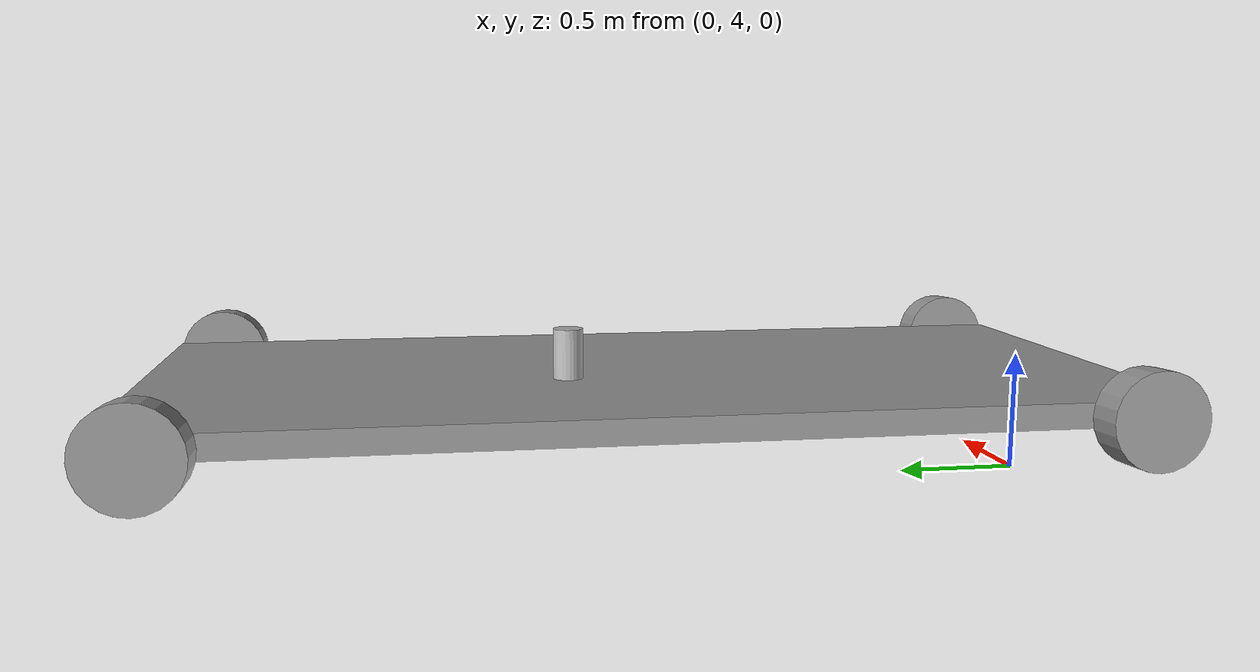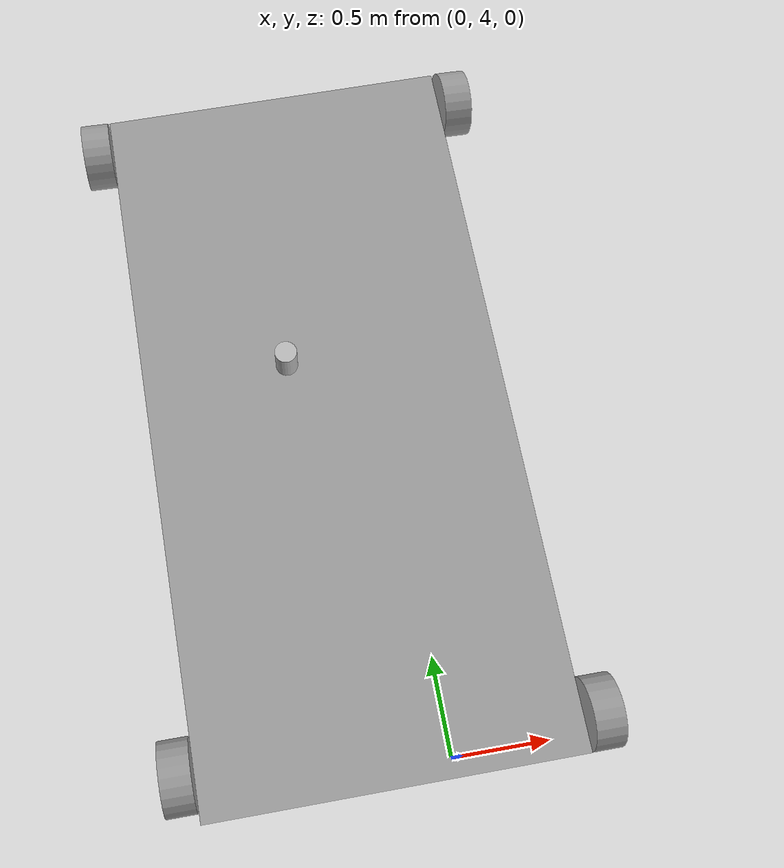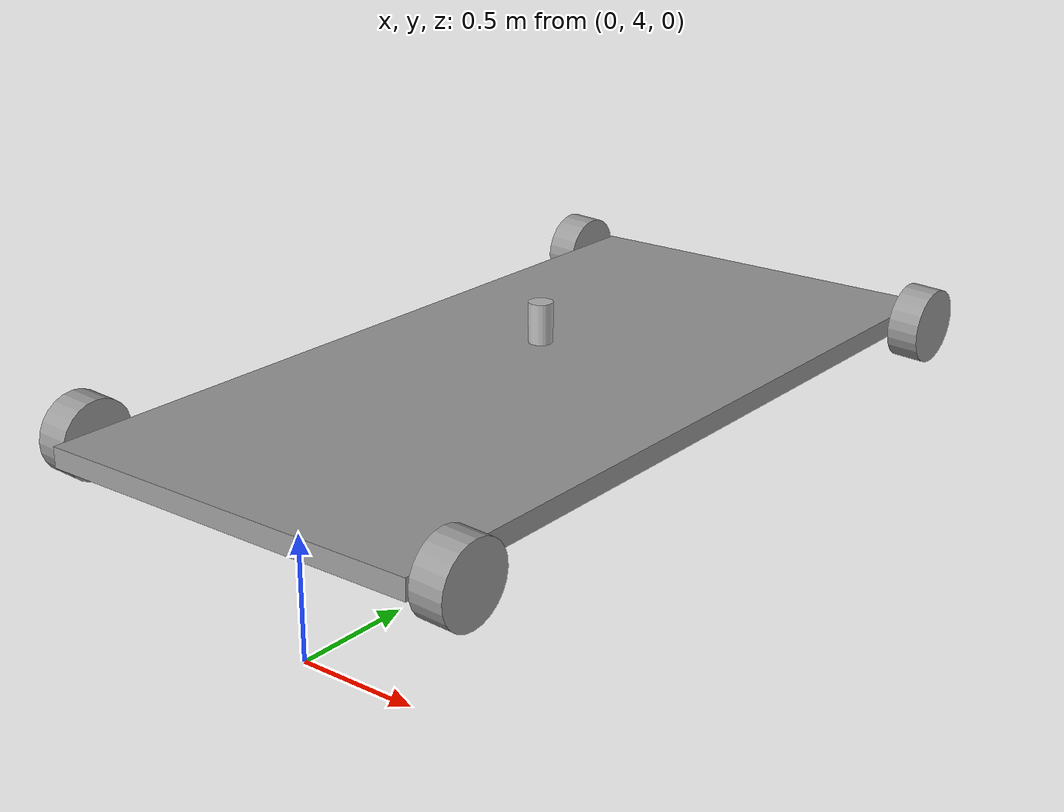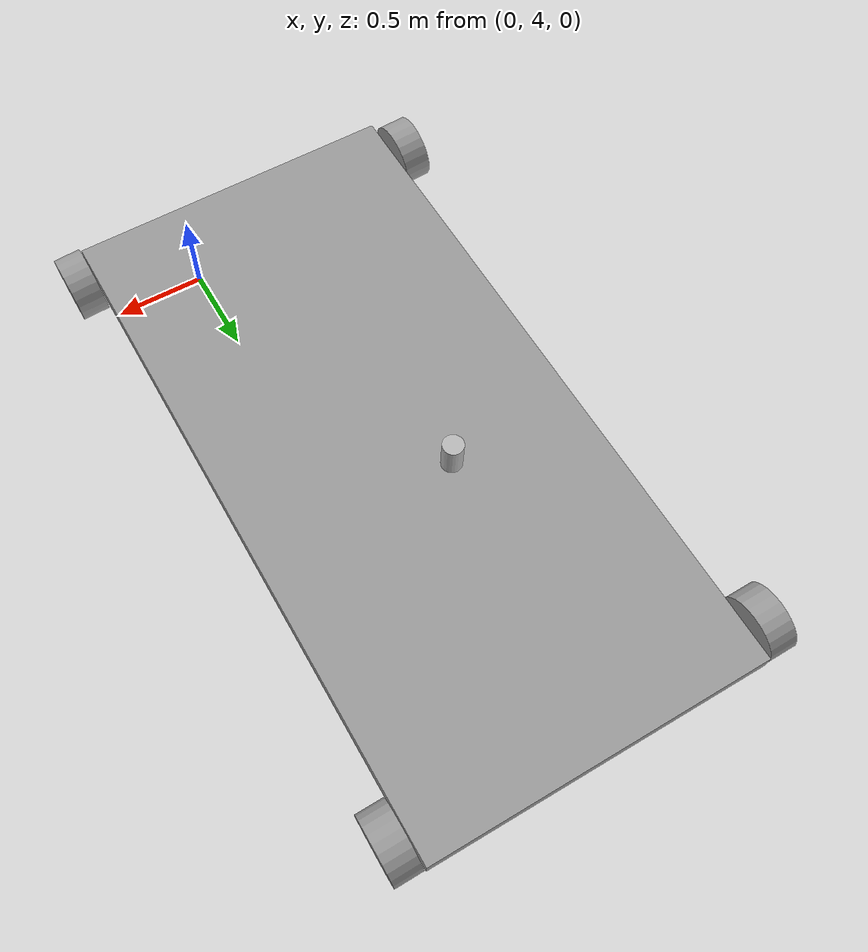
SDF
<?xml version='1.0'?>
<sdf version='1.6'>
  <model name='Cart'>
    <link name='link_0'>
      <pose frame=''>-0.321269 5.73085 0.5 0 -0 0</pose>
      <inertial>
        <mass>0.578674</mass>
        <inertia>
          <ixx>0.637469</ixx>
          <ixy>0</ixy>
          <ixz>0</ixz>
          <iyy>0.154218</iyy>
          <iyz>0</iyz>
          <izz>0.790921</izz>
        </inertia>
        <pose frame=''>0 0 0 0 -0 0</pose>
      </inertial>
      <gravity>1</gravity>
      <self_collide>0</self_collide>
      <kinematic>0</kinematic>
      <visual name='visual'>
        <pose frame=''>0 0 0 0 -0 0</pose>
        <geometry>
          <box>
            <size>1.78608 3.63473 0.08915</size>
          </box>
        </geometry>
        <material>
          <lighting>1</lighting>
          <script>
            <uri>file://media/materials/scripts/gazebo.material</uri>
            <name>Gazebo/Grey</name>
          </script>
          <shader type='pixel'>
            <normal_map>__default__</normal_map>
          </shader>
          <ambient>0.3 0.3 0.3 1</ambient>
          <diffuse>0.7 0.7 0.7 1</diffuse>
          <specular>0.01 0.01 0.01 1</specular>
          <emissive>0 0 0 1</emissive>
        </material>
        <transparency>0</transparency>
        <cast_shadows>1</cast_shadows>
      </visual>
      <collision name='collision'>
        <laser_retro>0</laser_retro>
        <max_contacts>10</max_contacts>
        <pose frame=''>0 0 0 0 -0 0</pose>
        <geometry>
          <box>
            <size>1.78608 3.63473 0.08915</size>
          </box>
        </geometry>
        <surface>
          <friction>
            <ode>
              <mu>1</mu>
              <mu2>1</mu2>
              <fdir1>0 0 0</fdir1>
              <slip1>0</slip1>
              <slip2>0</slip2>
            </ode>
            <torsional>
              <coefficient>1</coefficient>
              <patch_radius>0</patch_radius>
              <surface_radius>0</surface_radius>
              <use_patch_radius>1</use_patch_radius>
              <ode>
                <slip>0</slip>
              </ode>
            </torsional>
          </friction>
          <bounce>
            <restitution_coefficient>0</restitution_coefficient>
            <threshold>1e+06</threshold>
          </bounce>
          <contact>
            <collide_without_contact>0</collide_without_contact>
            <collide_without_contact_bitmask>1</collide_without_contact_bitmask>
            <collide_bitmask>1</collide_bitmask>
            <ode>
              <soft_cfm>0</soft_cfm>
              <soft_erp>0.2</soft_erp>
              <kp>1e+13</kp>
              <kd>1</kd>
              <max_vel>0.01</max_vel>
              <min_depth>0</min_depth>
            </ode>
            <bullet>
              <split_impulse>1</split_impulse>
              <split_impulse_penetration_threshold>-0.01</split_impulse_penetration_threshold>
              <soft_cfm>0</soft_cfm>
              <soft_erp>0.2</soft_erp>
              <kp>1e+13</kp>
              <kd>1</kd>
            </bullet>
          </contact>
        </surface>
      </collision>
    </link>
    <link name='link_1'>
      <pose frame=''>0.652344 7.37726 0.5 3.14159 1.52014 3.14159</pose>
      <inertial>
        <mass>0.016835</mass>
        <inertia>
          <ixx>0.000152095</ixx>
          <ixy>0</ixy>
          <ixz>0</ixz>
          <iyy>0.000152095</iyy>
          <iyz>0</iyz>
          <izz>0.000245993</izz>
        </inertia>
        <pose frame=''>0 0 0 0 -0 0</pose>
      </inertial>
      <gravity>1</gravity>
      <self_collide>0</self_collide>
      <kinematic>0</kinematic>
      <visual name='visual'>
        <pose frame=''>0 0 0 0 -0 0</pose>
        <geometry>
          <cylinder>
            <radius>0.17095</radius>
            <length>0.14402</length>
          </cylinder>
        </geometry>
        <material>
          <lighting>1</lighting>
          <script>
            <uri>file://media/materials/scripts/gazebo.material</uri>
            <name>Gazebo/Grey</name>
          </script>
          <shader type='pixel'>
            <normal_map>__default__</normal_map>
          </shader>
          <ambient>0.3 0.3 0.3 1</ambient>
          <diffuse>0.7 0.7 0.7 1</diffuse>
          <specular>0.01 0.01 0.01 1</specular>
          <emissive>0 0 0 1</emissive>
        </material>
        <transparency>0</transparency>
        <cast_shadows>1</cast_shadows>
      </visual>
      <collision name='collision'>
        <laser_retro>0</laser_retro>
        <max_contacts>10</max_contacts>
        <pose frame=''>0 0 0 0 -0 0</pose>
        <geometry>
          <cylinder>
            <radius>0.17095</radius>
            <length>0.14402</length>
          </cylinder>
        </geometry>
        <surface>
          <friction>
            <ode>
              <mu>1</mu>
              <mu2>1</mu2>
              <fdir1>0 0 0</fdir1>
              <slip1>0</slip1>
              <slip2>0</slip2>
            </ode>
            <torsional>
              <coefficient>1</coefficient>
              <patch_radius>0</patch_radius>
              <surface_radius>0</surface_radius>
              <use_patch_radius>1</use_patch_radius>
              <ode>
                <slip>0</slip>
              </ode>
            </torsional>
          </friction>
          <bounce>
            <restitution_coefficient>0</restitution_coefficient>
            <threshold>1e+06</threshold>
          </bounce>
          <contact>
            <collide_without_contact>0</collide_without_contact>
            <collide_without_contact_bitmask>1</collide_without_contact_bitmask>
            <collide_bitmask>1</collide_bitmask>
            <ode>
              <soft_cfm>0</soft_cfm>
              <soft_erp>0.2</soft_erp>
              <kp>1e+13</kp>
              <kd>1</kd>
              <max_vel>0.01</max_vel>
              <min_depth>0</min_depth>
            </ode>
            <bullet>
              <split_impulse>1</split_impulse>
              <split_impulse_penetration_threshold>-0.01</split_impulse_penetration_threshold>
              <soft_cfm>0</soft_cfm>
              <soft_erp>0.2</soft_erp>
              <kp>1e+13</kp>
              <kd>1</kd>
            </bullet>
          </contact>
        </surface>
      </collision>
    </link>
    <link name='link_1_clone'>
      <pose frame=''>0.652344 4.08444 0.5 3.14159 1.52014 3.14159</pose>
      <inertial>
        <mass>0.016835</mass>
        <inertia>
          <ixx>0.000152095</ixx>
          <ixy>0</ixy>
          <ixz>0</ixz>
          <iyy>0.000152095</iyy>
          <iyz>0</iyz>
          <izz>0.000245993</izz>
        </inertia>
        <pose frame=''>0 0 0 0 -0 0</pose>
      </inertial>
      <self_collide>0</self_collide>
      <kinematic>0</kinematic>
      <visual name='visual'>
        <pose frame=''>0 0 0 0 -0 0</pose>
        <geometry>
          <cylinder>
            <radius>0.17095</radius>
            <length>0.14402</length>
          </cylinder>
        </geometry>
        <material>
          <lighting>1</lighting>
          <script>
            <uri>file://media/materials/scripts/gazebo.material</uri>
            <name>Gazebo/Grey</name>
          </script>
          <shader type='pixel'>
            <normal_map>__default__</normal_map>
          </shader>
          <ambient>0.3 0.3 0.3 1</ambient>
          <diffuse>0.7 0.7 0.7 1</diffuse>
          <specular>0.01 0.01 0.01 1</specular>
          <emissive>0 0 0 1</emissive>
        </material>
        <transparency>0</transparency>
        <cast_shadows>1</cast_shadows>
      </visual>
      <collision name='collision'>
        <laser_retro>0</laser_retro>
        <max_contacts>10</max_contacts>
        <pose frame=''>0 0 0 0 -0 0</pose>
        <geometry>
          <cylinder>
            <radius>0.17095</radius>
            <length>0.14402</length>
          </cylinder>
        </geometry>
        <surface>
          <friction>
            <ode>
              <mu>1</mu>
              <mu2>1</mu2>
              <fdir1>0 0 0</fdir1>
              <slip1>0</slip1>
              <slip2>0</slip2>
            </ode>
            <torsional>
              <coefficient>1</coefficient>
              <patch_radius>0</patch_radius>
              <surface_radius>0</surface_radius>
              <use_patch_radius>1</use_patch_radius>
              <ode>
                <slip>0</slip>
              </ode>
            </torsional>
          </friction>
          <bounce>
            <restitution_coefficient>0</restitution_coefficient>
            <threshold>1e+06</threshold>
          </bounce>
          <contact>
            <collide_without_contact>0</collide_without_contact>
            <collide_without_contact_bitmask>1</collide_without_contact_bitmask>
            <collide_bitmask>1</collide_bitmask>
            <ode>
              <soft_cfm>0</soft_cfm>
              <soft_erp>0.2</soft_erp>
              <kp>1e+13</kp>
              <kd>1</kd>
              <max_vel>0.01</max_vel>
              <min_depth>0</min_depth>
            </ode>
            <bullet>
              <split_impulse>1</split_impulse>
              <split_impulse_penetration_threshold>-0.01</split_impulse_penetration_threshold>
              <soft_cfm>0</soft_cfm>
              <soft_erp>0.2</soft_erp>
              <kp>1e+13</kp>
              <kd>1</kd>
            </bullet>
          </contact>
        </surface>
      </collision>
    </link>
    <link name='link_1_clone_0'>
      <pose frame=''>-1.29488 4.13225 0.5 3.14159 1.52014 3.14159</pose>
      <inertial>
        <mass>0.016835</mass>
        <inertia>
          <ixx>0.000152095</ixx>
          <ixy>0</ixy>
          <ixz>0</ixz>
          <iyy>0.000152095</iyy>
          <iyz>0</iyz>
          <izz>0.000245993</izz>
        </inertia>
        <pose frame=''>0 0 0 0 -0 0</pose>
      </inertial>
      <self_collide>0</self_collide>
      <kinematic>0</kinematic>
      <visual name='visual'>
        <pose frame=''>0 0 0 0 -0 0</pose>
        <geometry>
          <cylinder>
            <radius>0.17095</radius>
            <length>0.14402</length>
          </cylinder>
        </geometry>
        <material>
          <lighting>1</lighting>
          <script>
            <uri>file://media/materials/scripts/gazebo.material</uri>
            <name>Gazebo/Grey</name>
          </script>
          <shader type='pixel'>
            <normal_map>__default__</normal_map>
          </shader>
          <ambient>0.3 0.3 0.3 1</ambient>
          <diffuse>0.7 0.7 0.7 1</diffuse>
          <specular>0.01 0.01 0.01 1</specular>
          <emissive>0 0 0 1</emissive>
        </material>
        <transparency>0</transparency>
        <cast_shadows>1</cast_shadows>
      </visual>
      <collision name='collision'>
        <laser_retro>0</laser_retro>
        <max_contacts>10</max_contacts>
        <pose frame=''>0 0 0 0 -0 0</pose>
        <geometry>
          <cylinder>
            <radius>0.17095</radius>
            <length>0.14402</length>
          </cylinder>
        </geometry>
        <surface>
          <friction>
            <ode>
              <mu>1</mu>
              <mu2>1</mu2>
              <fdir1>0 0 0</fdir1>
              <slip1>0</slip1>
              <slip2>0</slip2>
            </ode>
            <torsional>
              <coefficient>1</coefficient>
              <patch_radius>0</patch_radius>
              <surface_radius>0</surface_radius>
              <use_patch_radius>1</use_patch_radius>
              <ode>
                <slip>0</slip>
              </ode>
            </torsional>
          </friction>
          <bounce>
            <restitution_coefficient>0</restitution_coefficient>
            <threshold>1e+06</threshold>
          </bounce>
          <contact>
            <collide_without_contact>0</collide_without_contact>
            <collide_without_contact_bitmask>1</collide_without_contact_bitmask>
            <collide_bitmask>1</collide_bitmask>
            <ode>
              <soft_cfm>0</soft_cfm>
              <soft_erp>0.2</soft_erp>
              <kp>1e+13</kp>
              <kd>1</kd>
              <max_vel>0.01</max_vel>
              <min_depth>0</min_depth>
            </ode>
            <bullet>
              <split_impulse>1</split_impulse>
              <split_impulse_penetration_threshold>-0.01</split_impulse_penetration_threshold>
              <soft_cfm>0</soft_cfm>
              <soft_erp>0.2</soft_erp>
              <kp>1e+13</kp>
              <kd>1</kd>
            </bullet>
          </contact>
        </surface>
      </collision>
    </link>
    <link name='link_1_clone_1'>
      <pose frame=''>-1.29488 7.37726 0.5 3.14159 1.52014 3.14159</pose>
      <inertial>
        <mass>0.016835</mass>
        <inertia>
          <ixx>0.000152095</ixx>
          <ixy>0</ixy>
          <ixz>0</ixz>
          <iyy>0.000152095</iyy>
          <iyz>0</iyz>
          <izz>0.000245993</izz>
        </inertia>
        <pose frame=''>0 0 0 0 -0 0</pose>
      </inertial>
      <self_collide>0</self_collide>
      <kinematic>0</kinematic>
      <visual name='visual'>
        <pose frame=''>0 0 0 0 -0 0</pose>
        <geometry>
          <cylinder>
            <radius>0.17095</radius>
            <length>0.14402</length>
          </cylinder>
        </geometry>
        <material>
          <lighting>1</lighting>
          <script>
            <uri>file://media/materials/scripts/gazebo.material</uri>
            <name>Gazebo/Grey</name>
          </script>
          <shader type='pixel'>
            <normal_map>__default__</normal_map>
          </shader>
          <ambient>0.3 0.3 0.3 1</ambient>
          <diffuse>0.7 0.7 0.7 1</diffuse>
          <specular>0.01 0.01 0.01 1</specular>
          <emissive>0 0 0 1</emissive>
        </material>
        <transparency>0</transparency>
        <cast_shadows>1</cast_shadows>
      </visual>
      <collision name='collision'>
        <laser_retro>0</laser_retro>
        <max_contacts>10</max_contacts>
        <pose frame=''>0 0 0 0 -0 0</pose>
        <geometry>
          <cylinder>
            <radius>0.17095</radius>
            <length>0.14402</length>
          </cylinder>
        </geometry>
        <surface>
          <friction>
            <ode>
              <mu>1</mu>
              <mu2>1</mu2>
              <fdir1>0 0 0</fdir1>
              <slip1>0</slip1>
              <slip2>0</slip2>
            </ode>
            <torsional>
              <coefficient>1</coefficient>
              <patch_radius>0</patch_radius>
              <surface_radius>0</surface_radius>
              <use_patch_radius>1</use_patch_radius>
              <ode>
                <slip>0</slip>
              </ode>
            </torsional>
          </friction>
          <bounce>
            <restitution_coefficient>0</restitution_coefficient>
            <threshold>1e+06</threshold>
          </bounce>
          <contact>
            <collide_without_contact>0</collide_without_contact>
            <collide_without_contact_bitmask>1</collide_without_contact_bitmask>
            <collide_bitmask>1</collide_bitmask>
            <ode>
              <soft_cfm>0</soft_cfm>
              <soft_erp>0.2</soft_erp>
              <kp>1e+13</kp>
              <kd>1</kd>
              <max_vel>0.01</max_vel>
              <min_depth>0</min_depth>
            </ode>
            <bullet>
              <split_impulse>1</split_impulse>
              <split_impulse_penetration_threshold>-0.01</split_impulse_penetration_threshold>
              <soft_cfm>0</soft_cfm>
              <soft_erp>0.2</soft_erp>
              <kp>1e+13</kp>
              <kd>1</kd>
            </bullet>
          </contact>
        </surface>
      </collision>
    </link>
    <model name='beer'>
      <link name='link'>
        <pose frame=''>0 0 0.115 0 -0 0</pose>
        <inertial>
          <mass>0.39</mass>
          <inertia>
            <ixx>0.00058</ixx>
            <ixy>0</ixy>
            <ixz>0</ixz>
            <iyy>0.00058</iyy>
            <iyz>0</iyz>
            <izz>0.00019</izz>
          </inertia>
        </inertial>
        <collision name='collision'>
          <geometry>
            <cylinder>
              <radius>0.055</radius>
              <length>0.23</length>
            </cylinder>
          </geometry>
        </collision>
        <visual name='visual'>
          <geometry>
            <cylinder>
              <radius>0.055</radius>
              <length>0.23</length>
            </cylinder>
          </geometry>
          <material>
            <script>
              <uri>model://beer/materials/scripts</uri>
              <uri>model://beer/materials/textures</uri>
              <name>Beer/Diffuse</name>
            </script>
          </material>
        </visual>
      </link>
      <pose frame=''>-0.487945 5.99468 0.5 0 -0 0</pose>
    </model>
    <joint name='link_0_JOINT_0' type='revolute'>
      <parent>link_0</parent>
      <child>link_1</child>
      <pose frame=''>0 0 0 0 -0 0</pose>
      <axis>
        <xyz>0 0 1</xyz>
        <use_parent_model_frame>0</use_parent_model_frame>
        <limit>
          <lower>-1.79769e+308</lower>
          <upper>1.79769e+308</upper>
          <effort>-1</effort>
          <velocity>-1</velocity>
        </limit>
        <dynamics>
          <spring_reference>0</spring_reference>
          <spring_stiffness>0</spring_stiffness>
          <damping>0</damping>
        </dynamics>
      </axis>
      <physics>
        <ode>
          <limit>
            <cfm>0</cfm>
            <erp>0.2</erp>
          </limit>
          <suspension>
            <cfm>0</cfm>
            <erp>0.2</erp>
          </suspension>
        </ode>
      </physics>
    </joint>
    <joint name='link_0_JOINT_1' type='revolute'>
      <parent>link_0</parent>
      <child>link_1_clone_1</child>
      <pose frame=''>0 0 0 0 -0 0</pose>
      <axis>
        <xyz>0 0 1</xyz>
        <use_parent_model_frame>0</use_parent_model_frame>
        <limit>
          <lower>-1.79769e+308</lower>
          <upper>1.79769e+308</upper>
          <effort>-1</effort>
          <velocity>-1</velocity>
        </limit>
        <dynamics>
          <spring_reference>0</spring_reference>
          <spring_stiffness>0</spring_stiffness>
          <damping>0</damping>
        </dynamics>
      </axis>
      <physics>
        <ode>
          <limit>
            <cfm>0</cfm>
            <erp>0.2</erp>
          </limit>
          <suspension>
            <cfm>0</cfm>
            <erp>0.2</erp>
          </suspension>
        </ode>
      </physics>
    </joint>
    <joint name='link_0_JOINT_2' type='revolute'>
      <parent>link_0</parent>
      <child>link_1_clone</child>
      <pose frame=''>0 0 0 0 -0 0</pose>
      <axis>
        <xyz>0 0 1</xyz>
        <use_parent_model_frame>0</use_parent_model_frame>
        <limit>
          <lower>-1.79769e+308</lower>
          <upper>1.79769e+308</upper>
          <effort>-1</effort>
          <velocity>-1</velocity>
        </limit>
        <dynamics>
          <spring_reference>0</spring_reference>
          <spring_stiffness>0</spring_stiffness>
          <damping>0</damping>
        </dynamics>
      </axis>
      <physics>
        <ode>
          <limit>
            <cfm>0</cfm>
            <erp>0.2</erp>
          </limit>
          <suspension>
            <cfm>0</cfm>
            <erp>0.2</erp>
          </suspension>
        </ode>
      </physics>
    </joint>
    <joint name='link_0_JOINT_3' type='revolute'>
      <parent>link_0</parent>
      <child>link_1_clone_0</child>
      <pose frame=''>0 0 0 0 -0 0</pose>
      <axis>
        <xyz>1 0 0</xyz>
        <use_parent_model_frame>0</use_parent_model_frame>
        <limit>
          <lower>-1.79769e+308</lower>
          <upper>1.79769e+308</upper>
          <effort>-1</effort>
          <velocity>-1</velocity>
        </limit>
        <dynamics>
          <spring_reference>0</spring_reference>
          <spring_stiffness>0</spring_stiffness>
          <damping>0</damping>
        </dynamics>
      </axis>
      <physics>
        <ode>
          <limit>
            <cfm>0</cfm>
            <erp>0.2</erp>
          </limit>
          <suspension>
            <cfm>0</cfm>
            <erp>0.2</erp>
          </suspension>
        </ode>
      </physics>
    </joint>
    <static>0</static>
    <allow_auto_disable>1</allow_auto_disable>
  </model>
</sdf>
